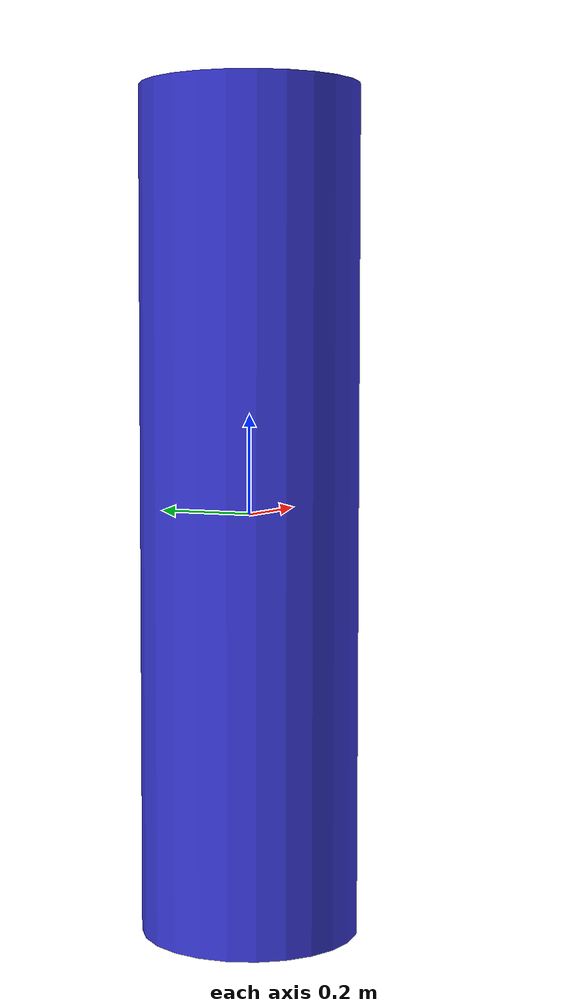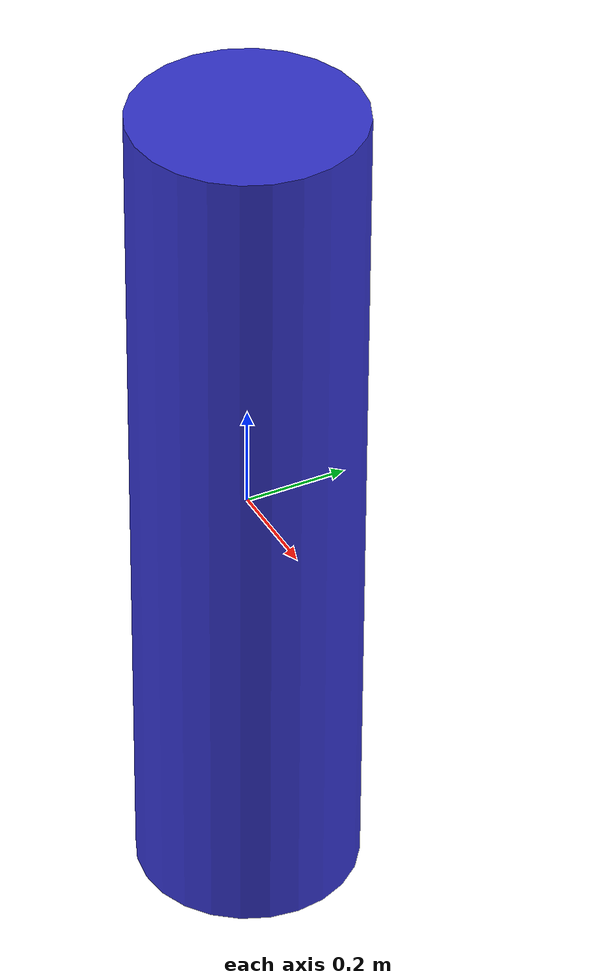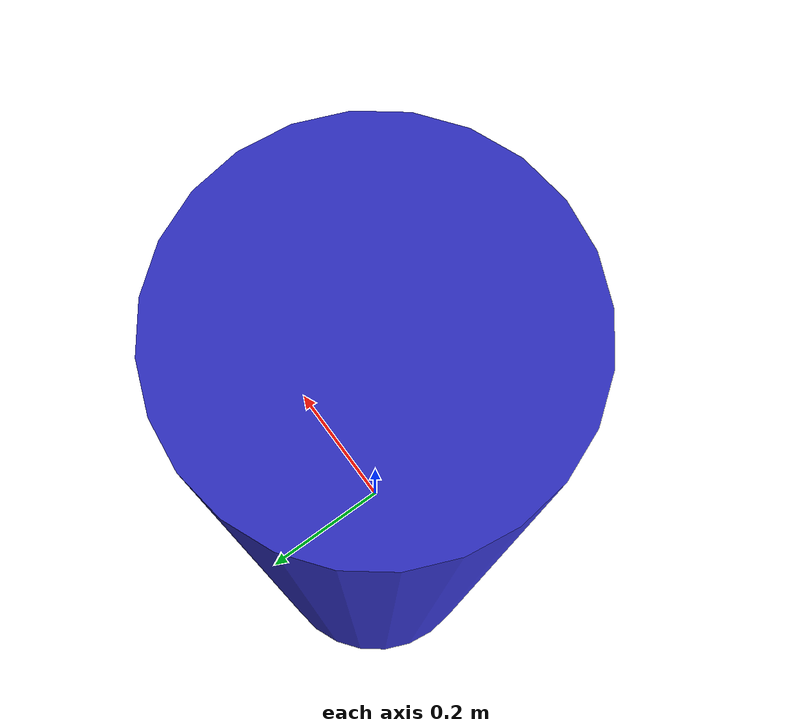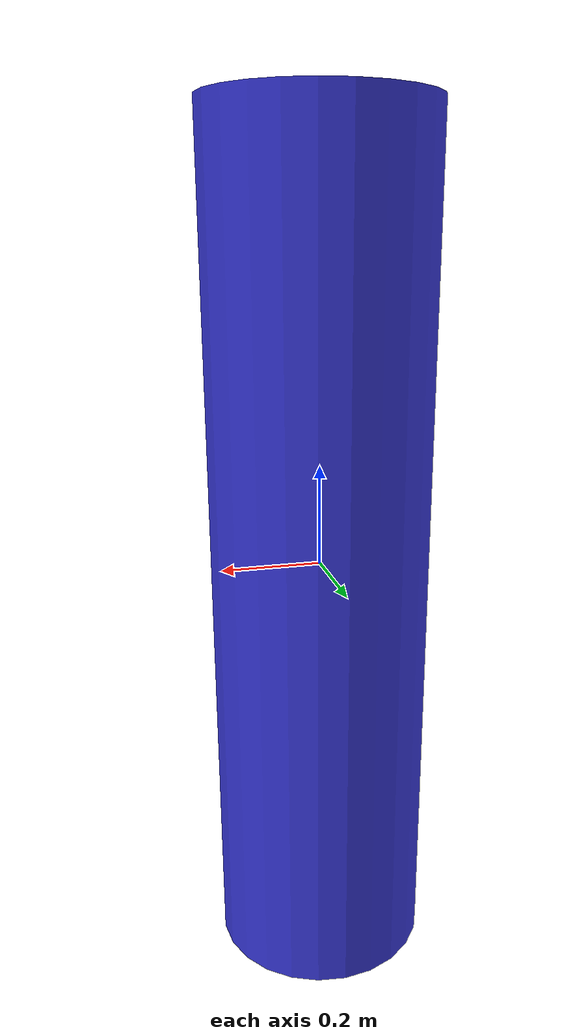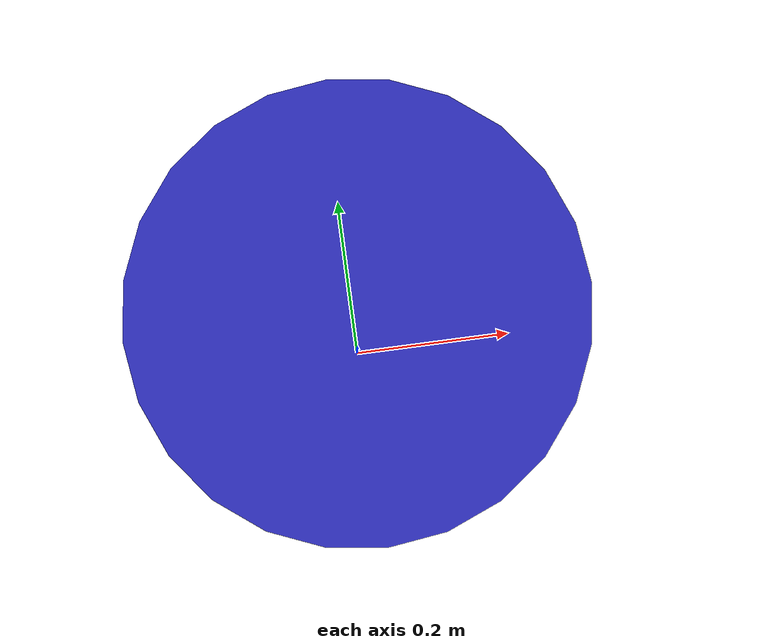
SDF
<?xml version="1.0" ?>
<sdf version="1.6">

  <model name="human_proxy_moving">
    <static>false</static>

    <link name="link">
      <inertial>
        <mass>60</mass>
        <inertia>
          <ixx>1.0</ixx>
          <ixy>0.0</ixy>
          <ixz>0.0</ixz>
          <iyy>1.0</iyy>
          <iyz>0.0</iyz>
          <izz>1.0</izz>
        </inertia>
      </inertial>

      <visual name="visual">
        <geometry>
          <cylinder>
            <radius>0.22</radius>
            <length>1.7</length>
          </cylinder>
        </geometry>
        <material>
          <ambient>0.2 0.2 0.8 1</ambient>
        </material>
      </visual>

      <collision name="collision">
        <geometry>
          <cylinder>
            <radius>0.22</radius>
            <length>1.7</length>
          </cylinder>
        </geometry>
      </collision>
    </link>

    <plugin name="planar_move" filename="libgazebo_ros_planar_move.so">
      <robotNamespace>/</robotNamespace>
      <x_vel>0.5</x_vel>
      <y_vel>0.0</y_vel>
      <yaw_vel>0.0</yaw_vel>
    </plugin>

  </model>
</sdf>
